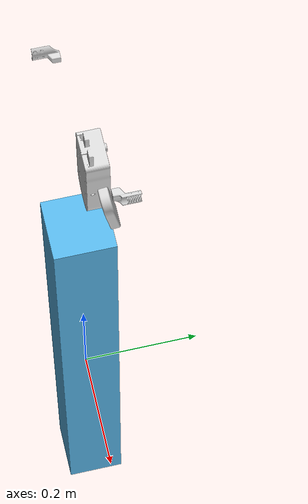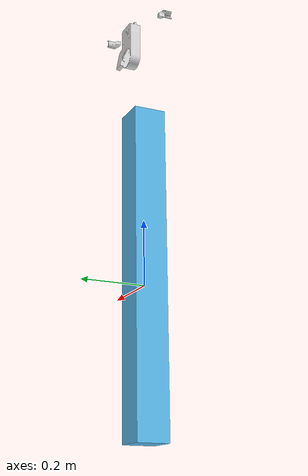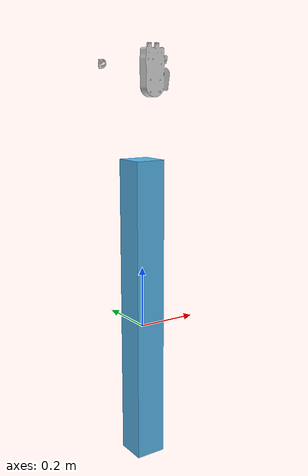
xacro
<?xml version="1.0" ?>

<robot name="orendes_85_gripper" xmlns:xacro="http://ros.org/wiki/xacro">
    <xacro:include filename="$(find orendes_gripper)/urdf/orendes_85_gripper.urdf.xacro" />

    <gazebo>
        <plugin name="gazebo_ros_control" filename="libgazebo_ros_control.so">
            <robotNamespace>/orendes_gripper</robotNamespace>
        </plugin>
    </gazebo>

    <link name="world"/>
    <joint name="world_fixed" type="fixed">
        <origin xyz="0 0 0" rpy="0 0 0"/>
        <parent link="world"/>
        <child link="gripper_root_link"/>
    </joint>

    <link name="gripper_root_link">
        <visual>
            <origin xyz="0 0 0.05" rpy="0 0 0"/>
            <geometry>
                <box size="0.1 0.1 1.0"/>
            </geometry>
        </visual>
        <collision>
            <origin xyz="0 0 0.05" rpy="0 0 0"/>
            <geometry>
                <box size="0.1 0.1 1.0"/>
            </geometry>
        </collision>
        <inertial>
            <mass value="1e2" />
            <origin xyz="0.0 0.0 0.0" />
            <inertia ixx="0.00001" ixy="0.00000" ixz="0.00000"
                     iyx="0.00000" iyy="0.00001" iyz="0.00000"
                     izx="0.00000" izy="0.00000" izz="0.00001" />
        </inertial>
    </link>

    <xacro:orendes_85_gripper prefix="" parent="gripper_root_link">
        <origin xyz="0.05 0 0.85" rpy="0 0 0"/>
    </xacro:orendes_85_gripper>
</robot>

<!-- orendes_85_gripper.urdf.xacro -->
<robot name="orendes_85_gripper" xmlns:xacro="http://ros.org/wiki/xacro">
    <xacro:property name="pi" value="3.14159"/>

    <xacro:macro name="orendes_85_gripper" params="prefix parent *origin">

        <joint name="${prefix}orendes_85_base_joint" type="fixed">
            <parent link="${parent}"/>
            <child link="${prefix}orendes_85_base_link"/>
            <xacro:insert_block name="origin"/>
        </joint>

        <link name="${prefix}orendes_85_base_link">
            <visual>
                <geometry>
                    <mesh filename="package://orendes_gripper/meshes/visual/orendes_85_base_link.dae" scale="0.001 0.001 0.001"/>
                </geometry>
            </visual>
            <collision>
                <geometry>
                    <mesh filename="package://orendes_gripper/meshes/collision/orendes_85_base_link.stl" scale="0.001 0.001 0.001"/>
                </geometry>
            </collision>
            <inertial>
                <mass value="0.636951" />
                <origin xyz="0.0 0.0 0.0" />
                <inertia ixx="0.000380" ixy="0.000000" ixz="0.000000"
                        iyx="0.000000" iyy="0.001110" iyz="0.000000"
                        izx="0.000000" izy="0.000000" izz="0.001171" />
            </inertial>
        </link>

        <joint name="${prefix}orendes_85_left_finger_tip_joint" type="revolute">
            <parent link="${prefix}orendes_85_base_link"/>
            <child link="${prefix}orendes_85_left_finger_tip_link"/>
            <axis xyz="0 0 1"/>
            <origin rpy="${pi} 0.0 0.0" xyz="0.05490451627 0.03060114443 0.0"/>
            <limit lower="0.0" upper="0.804" velocity="2.0" effort="1000"/>
        </joint>

        <joint name="${prefix}orendes_85_right_finger_tip_joint" type="continuous">
            <parent link="${prefix}orendes_85_base_link"/>
            <child link="${prefix}orendes_85_right_finger_tip_link"/>
            <axis xyz="0 0 1"/>
            <origin rpy="0.0 0.0 0.0" xyz="0.05490451627 -0.03060114443 0.0"/>
            <limit lower="-3.14" upper="3.14" velocity="100.0" effort="1000"/>
            <mimic joint="${prefix}orendes_85_left_finger_tip_joint"/>
        </joint>

        <link name="${prefix}orendes_85_left_finger_tip_link">
            <visual>
                <geometry>
                    <mesh filename="package://orendes_gripper/meshes/visual/orendes_85_left_finger_tip_link.dae" scale="0.001 0.001 0.001"/>
                </geometry>
            </visual>
            <collision>
                <geometry>
                    <mesh filename="package://orendes_gripper/meshes/collision/orendes_85_left_finger_tip_link.stl" scale="0.001 0.001 0.001"/>
                </geometry>
            </collision>
            <inertial>
                <mass value="0.018491" />
                <origin xyz="0.0 0.0 0.0" />
                <inertia ixx="0.000009" ixy="-0.000001" ixz="0.000000"
                         iyx="-0.000001" iyy="0.000001" iyz="0.000000"
                         izx="0.000000" izy="0.000000" izz="0.000010" />
            </inertial>
        </link>

        <link name="${prefix}orendes_85_right_finger_tip_link">
            <visual>
                <geometry>
                    <mesh filename="package://orendes_gripper/meshes/visual/orendes_85_right_finger_tip_link.dae" scale="0.001 0.001 0.001"/>
                </geometry>
            </visual>
            <collision>
                <geometry>
                    <mesh filename="package://orendes_gripper/meshes/collision/orendes_85_right_finger_tip_link.stl" scale="0.001 0.001 0.001"/>
                </geometry>
            </collision>
            <inertial>
                <mass value="0.018491" />
                <origin xyz="0.0 0.0 0.0" />
                <inertia ixx="0.000009" ixy="-0.000001" ixz="0.000000"
                         iyx="-0.000001" iyy="0.000001" iyz="0.000000"
                         izx="0.000000" izy="0.000000" izz="0.000010" />
            </inertial>
        </link>
    </xacro:macro>
</robot>
